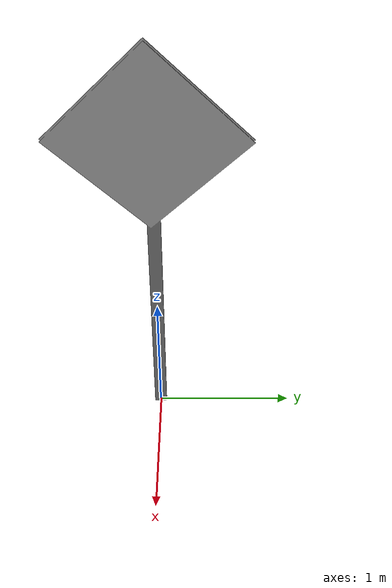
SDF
<?xml version="1.0" ?>
<sdf version="1.5">
  <model name="pedestrain_walk">
    <link name="link">
      <collision name="collision">
        <geometry>
          <mesh>
            <scale>1 1 1</scale>
            <uri>model://pedestrain_walk/meshes/pedestrain_walk.dae</uri>
          </mesh>
        </geometry>
      </collision>
      <visual name="visual">
        <geometry>
          <mesh>
            <scale>1 1 1</scale>
            <uri>model://pedestrain_walk/meshes/pedestrain_walk.dae</uri>
          </mesh>
        </geometry>
      </visual>
    </link>
  </model>
</sdf>
